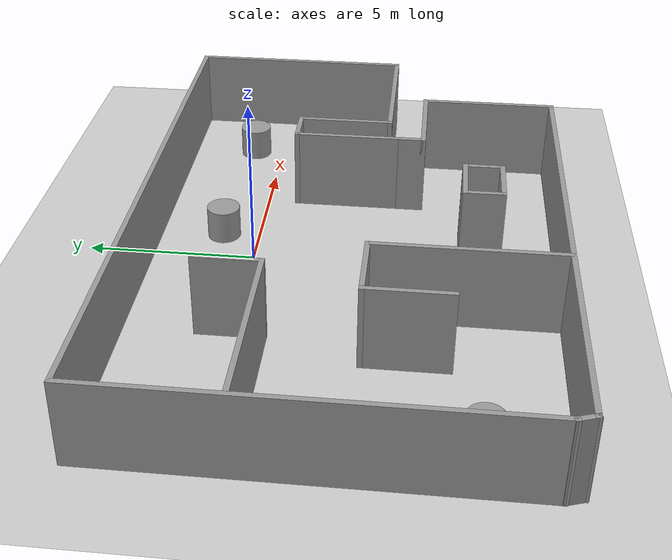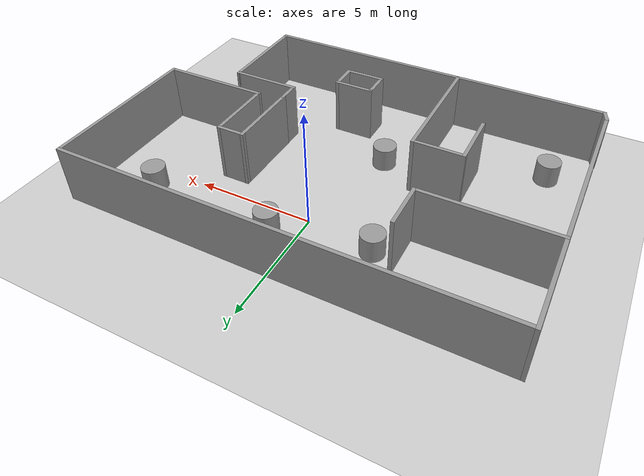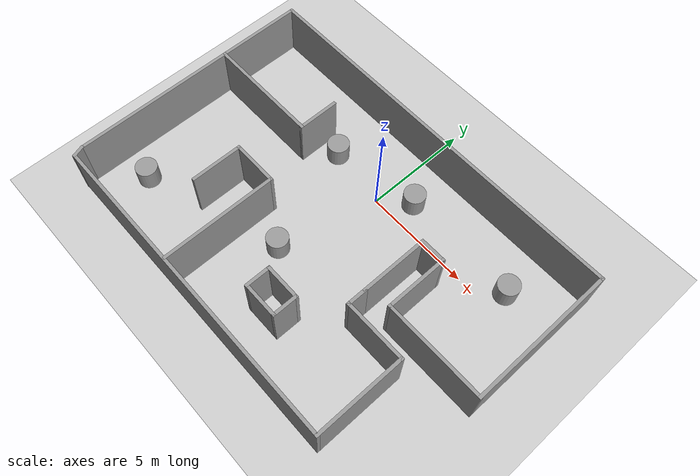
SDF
<sdf version="1.7">
 <world name="default">
  <light name="sun" type="directional">
   <pose>0 0 10 0 -0 0</pose>
   <diffuse>0.8 0.8 0.8 1</diffuse>
   <specular>0.2 0.2 0.2 1</specular>
   <attenuation>
    <range>1000</range>
    <constant>0.9</constant>
    <linear>0.01</linear>
    <quadratic>0.001</quadratic>
   </attenuation>
   <direction>-0.5 0.1 -0.9</direction>
   <spot><inner_angle>0</inner_angle><outer_angle>0</outer_angle><falloff>0</falloff></spot>
  </light>
  <model name="ground_plane">
   <static>1</static>
   <link name="link">
    <collision name="collision">
     <geometry><plane><normal>0 0 1</normal><size>100 100</size></plane></geometry>
     <surface><friction><ode><mu>100</mu><mu2>50</mu2></ode></friction></surface>
    </collision>
    <visual name="visual">
     <cast_shadows>0</cast_shadows>
     <geometry><plane><normal>0 0 1</normal><size>100 100</size></plane></geometry>
     <material>
      <script><uri>file://media/materials/scripts/gazebo.material</uri><name>Gazebo/Grey</name></script>
     </material>
    </visual>
   </link>
  </model>
  <gravity>0 0 -9.8</gravity>
  <magnetic_field>6e-06 2.3e-05 -4.2e-05</magnetic_field>
  <atmosphere type="adiabatic"/>
  <physics type="ode">
   <max_step_size>0.001</max_step_size>
   <real_time_factor>1</real_time_factor>
   <real_time_update_rate>1000</real_time_update_rate>
  </physics>
  <scene><ambient>0.4 0.4 0.4 1</ambient><background>0.7 0.7 0.7 1</background><shadows>1</shadows></scene>
  <audio><device>default</device></audio>
  <spherical_coordinates>
   <surface_model>EARTH_WGS84</surface_model>
   <latitude_deg>0</latitude_deg>
   <longitude_deg>0</longitude_deg>
   <elevation>0</elevation>
   <heading_deg>0</heading_deg>
  </spherical_coordinates>
  <model name="test2">
   <link name="Wall_0">
    <pose>-9.16507 0.234934 0 0 -0 1.5708</pose>
    <visual name="Wall_0_Visual">
     <pose>0 0 1.25 0 -0 0</pose>
     <geometry><box><size>11.75 0.15 2.5</size></box></geometry>
     <material>
      <script><uri>file://media/materials/scripts/gazebo.material</uri><name>Gazebo/Grey</name></script>
      <ambient>1 1 1 1</ambient>
      <shader type="pixel"/>
     </material>
     <meta><layer>0</layer></meta>
    </visual>
    <collision name="Wall_0_Collision">
     <pose>0 0 1.25 0 -0 0</pose>
     <geometry><box><size>11.75 0.15 2.5</size></box></geometry>
     <surface>
      <friction>
       <ode><mu>1</mu><mu2>1</mu2><fdir1>0 0 0</fdir1><slip1>0</slip1><slip2>0</slip2></ode>
       <torsional>
        <coefficient>1</coefficient>
        <patch_radius>0</patch_radius>
        <surface_radius>0</surface_radius>
        <use_patch_radius>1</use_patch_radius>
        <ode><slip>0</slip></ode>
       </torsional>
      </friction>
      <bounce><restitution_coefficient>0</restitution_coefficient><threshold>1e+06</threshold></bounce>
      <contact>
       <collide_without_contact>0</collide_without_contact>
       <collide_without_contact_bitmask>1</collide_without_contact_bitmask>
       <collide_bitmask>1</collide_bitmask>
       <ode>
        <soft_cfm>0</soft_cfm>
        <soft_erp>0.2</soft_erp>
        <kp>1e+13</kp>
        <kd>1</kd>
        <max_vel>0.01</max_vel>
        <min_depth>0</min_depth>
       </ode>
       <bullet>
        <split_impulse>1</split_impulse>
        <split_impulse_penetration_threshold>-0.01</split_impulse_penetration_threshold>
        <soft_cfm>0</soft_cfm>
        <soft_erp>0.2</soft_erp>
        <kp>1e+13</kp>
        <kd>1</kd>
       </bullet>
      </contact>
     </surface>
    </collision>
   </link>
   <link name="Wall_1">
    <pose>0.009934 6.03493 0 0 -0 0</pose>
    <visual name="Wall_1_Visual">
     <pose>0 0 1.25 0 -0 0</pose>
     <geometry><box><size>18.5 0.15 2.5</size></box></geometry>
     <material>
      <script><uri>file://media/materials/scripts/gazebo.material</uri><name>Gazebo/Grey</name></script>
      <ambient>1 1 1 1</ambient>
      <shader type="pixel"/>
     </material>
     <meta><layer>0</layer></meta>
    </visual>
    <collision name="Wall_1_Collision">
     <pose>0 0 1.25 0 -0 0</pose>
     <geometry><box><size>18.5 0.15 2.5</size></box></geometry>
     <surface>
      <friction>
       <ode><mu>1</mu><mu2>1</mu2><fdir1>0 0 0</fdir1><slip1>0</slip1><slip2>0</slip2></ode>
       <torsional>
        <coefficient>1</coefficient>
        <patch_radius>0</patch_radius>
        <surface_radius>0</surface_radius>
        <use_patch_radius>1</use_patch_radius>
        <ode><slip>0</slip></ode>
       </torsional>
      </friction>
      <bounce><restitution_coefficient>0</restitution_coefficient><threshold>1e+06</threshold></bounce>
      <contact>
       <collide_without_contact>0</collide_without_contact>
       <collide_without_contact_bitmask>1</collide_without_contact_bitmask>
       <collide_bitmask>1</collide_bitmask>
       <ode>
        <soft_cfm>0</soft_cfm>
        <soft_erp>0.2</soft_erp>
        <kp>1e+13</kp>
        <kd>1</kd>
        <max_vel>0.01</max_vel>
        <min_depth>0</min_depth>
       </ode>
       <bullet>
        <split_impulse>1</split_impulse>
        <split_impulse_penetration_threshold>-0.01</split_impulse_penetration_threshold>
        <soft_cfm>0</soft_cfm>
        <soft_erp>0.2</soft_erp>
        <kp>1e+13</kp>
        <kd>1</kd>
       </bullet>
      </contact>
     </surface>
    </collision>
   </link>
   <link name="Wall_10">
    <pose>-1.34007 -6.01507 0 0 -0 3.14159</pose>
    <visual name="Wall_10_Visual">
     <pose>0 0 1.25 0 -0 0</pose>
     <geometry><box><size>15.5 0.15 2.5</size></box></geometry>
     <material>
      <script><uri>file://media/materials/scripts/gazebo.material</uri><name>Gazebo/Grey</name></script>
      <ambient>1 1 1 1</ambient>
      <shader type="pixel"/>
     </material>
     <meta><layer>0</layer></meta>
    </visual>
    <collision name="Wall_10_Collision">
     <pose>0 0 1.25 0 -0 0</pose>
     <geometry><box><size>15.5 0.15 2.5</size></box></geometry>
     <surface>
      <friction>
       <ode><mu>1</mu><mu2>1</mu2><fdir1>0 0 0</fdir1><slip1>0</slip1><slip2>0</slip2></ode>
       <torsional>
        <coefficient>1</coefficient>
        <patch_radius>0</patch_radius>
        <surface_radius>0</surface_radius>
        <use_patch_radius>1</use_patch_radius>
        <ode><slip>0</slip></ode>
       </torsional>
      </friction>
      <bounce><restitution_coefficient>0</restitution_coefficient><threshold>1e+06</threshold></bounce>
      <contact>
       <collide_without_contact>0</collide_without_contact>
       <collide_without_contact_bitmask>1</collide_without_contact_bitmask>
       <collide_bitmask>1</collide_bitmask>
       <ode>
        <soft_cfm>0</soft_cfm>
        <soft_erp>0.2</soft_erp>
        <kp>1e+13</kp>
        <kd>1</kd>
        <max_vel>0.01</max_vel>
        <min_depth>0</min_depth>
       </ode>
       <bullet>
        <split_impulse>1</split_impulse>
        <split_impulse_penetration_threshold>-0.01</split_impulse_penetration_threshold>
        <soft_cfm>0</soft_cfm>
        <soft_erp>0.2</soft_erp>
        <kp>1e+13</kp>
        <kd>1</kd>
       </bullet>
      </contact>
     </surface>
    </collision>
   </link>
   <link name="Wall_11">
    <pose>-9.09007 -5.79007 0 0 -0 1.89255</pose>
    <visual name="Wall_11_Visual">
     <pose>0 0 1.25 0 -0 0</pose>
     <geometry><box><size>0.624342 0.15 2.5</size></box></geometry>
     <material>
      <script><uri>file://media/materials/scripts/gazebo.material</uri><name>Gazebo/Grey</name></script>
      <ambient>1 1 1 1</ambient>
      <shader type="pixel"/>
     </material>
     <meta><layer>0</layer></meta>
    </visual>
    <collision name="Wall_11_Collision">
     <pose>0 0 1.25 0 -0 0</pose>
     <geometry><box><size>0.624342 0.15 2.5</size></box></geometry>
     <surface>
      <friction>
       <ode><mu>1</mu><mu2>1</mu2><fdir1>0 0 0</fdir1><slip1>0</slip1><slip2>0</slip2></ode>
       <torsional>
        <coefficient>1</coefficient>
        <patch_radius>0</patch_radius>
        <surface_radius>0</surface_radius>
        <use_patch_radius>1</use_patch_radius>
        <ode><slip>0</slip></ode>
       </torsional>
      </friction>
      <bounce><restitution_coefficient>0</restitution_coefficient><threshold>1e+06</threshold></bounce>
      <contact>
       <collide_without_contact>0</collide_without_contact>
       <collide_without_contact_bitmask>1</collide_without_contact_bitmask>
       <collide_bitmask>1</collide_bitmask>
       <ode>
        <soft_cfm>0</soft_cfm>
        <soft_erp>0.2</soft_erp>
        <kp>1e+13</kp>
        <kd>1</kd>
        <max_vel>0.01</max_vel>
        <min_depth>0</min_depth>
       </ode>
       <bullet>
        <split_impulse>1</split_impulse>
        <split_impulse_penetration_threshold>-0.01</split_impulse_penetration_threshold>
        <soft_cfm>0</soft_cfm>
        <soft_erp>0.2</soft_erp>
        <kp>1e+13</kp>
        <kd>1</kd>
       </bullet>
      </contact>
     </surface>
    </collision>
   </link>
   <link name="Wall_13">
    <pose>-6.49007 2.0519 0 0 -0 0</pose>
    <visual name="Wall_13_Visual">
     <pose>0 0 1.25 0 -0 0</pose>
     <geometry><box><size>5.5 0.15 2.5</size></box></geometry>
     <material>
      <script><uri>file://media/materials/scripts/gazebo.material</uri><name>Gazebo/Grey</name></script>
      <ambient>1 1 1 1</ambient>
      <shader type="pixel"/>
     </material>
     <meta><layer>0</layer></meta>
    </visual>
    <collision name="Wall_13_Collision">
     <pose>0 0 1.25 0 -0 0</pose>
     <geometry><box><size>5.5 0.15 2.5</size></box></geometry>
     <surface>
      <friction>
       <ode><mu>1</mu><mu2>1</mu2><fdir1>0 0 0</fdir1><slip1>0</slip1><slip2>0</slip2></ode>
       <torsional>
        <coefficient>1</coefficient>
        <patch_radius>0</patch_radius>
        <surface_radius>0</surface_radius>
        <use_patch_radius>1</use_patch_radius>
        <ode><slip>0</slip></ode>
       </torsional>
      </friction>
      <bounce><restitution_coefficient>0</restitution_coefficient><threshold>1e+06</threshold></bounce>
      <contact>
       <collide_without_contact>0</collide_without_contact>
       <collide_without_contact_bitmask>1</collide_without_contact_bitmask>
       <collide_bitmask>1</collide_bitmask>
       <ode>
        <soft_cfm>0</soft_cfm>
        <soft_erp>0.2</soft_erp>
        <kp>1e+13</kp>
        <kd>1</kd>
        <max_vel>0.01</max_vel>
        <min_depth>0</min_depth>
       </ode>
       <bullet>
        <split_impulse>1</split_impulse>
        <split_impulse_penetration_threshold>-0.01</split_impulse_penetration_threshold>
        <soft_cfm>0</soft_cfm>
        <soft_erp>0.2</soft_erp>
        <kp>1e+13</kp>
        <kd>1</kd>
       </bullet>
      </contact>
     </surface>
    </collision>
   </link>
   <link name="Wall_14">
    <pose>-3.81507 2.9769 0 0 -0 1.5708</pose>
    <visual name="Wall_14_Visual">
     <pose>0 0 1.25 0 -0 0</pose>
     <geometry><box><size>2 0.15 2.5</size></box></geometry>
     <material>
      <script><uri>file://media/materials/scripts/gazebo.material</uri><name>Gazebo/Grey</name></script>
      <ambient>1 1 1 1</ambient>
      <shader type="pixel"/>
     </material>
     <meta><layer>0</layer></meta>
    </visual>
    <collision name="Wall_14_Collision">
     <pose>0 0 1.25 0 -0 0</pose>
     <geometry><box><size>2 0.15 2.5</size></box></geometry>
     <surface>
      <friction>
       <ode><mu>1</mu><mu2>1</mu2><fdir1>0 0 0</fdir1><slip1>0</slip1><slip2>0</slip2></ode>
       <torsional>
        <coefficient>1</coefficient>
        <patch_radius>0</patch_radius>
        <surface_radius>0</surface_radius>
        <use_patch_radius>1</use_patch_radius>
        <ode><slip>0</slip></ode>
       </torsional>
      </friction>
      <bounce><restitution_coefficient>0</restitution_coefficient><threshold>1e+06</threshold></bounce>
      <contact>
       <collide_without_contact>0</collide_without_contact>
       <collide_without_contact_bitmask>1</collide_without_contact_bitmask>
       <collide_bitmask>1</collide_bitmask>
       <ode>
        <soft_cfm>0</soft_cfm>
        <soft_erp>0.2</soft_erp>
        <kp>1e+13</kp>
        <kd>1</kd>
        <max_vel>0.01</max_vel>
        <min_depth>0</min_depth>
       </ode>
       <bullet>
        <split_impulse>1</split_impulse>
        <split_impulse_penetration_threshold>-0.01</split_impulse_penetration_threshold>
        <soft_cfm>0</soft_cfm>
        <soft_erp>0.2</soft_erp>
        <kp>1e+13</kp>
        <kd>1</kd>
       </bullet>
      </contact>
     </surface>
    </collision>
   </link>
   <link name="Wall_16">
    <pose>-2.67994 -3.28774 0 0 -0 1.5708</pose>
    <visual name="Wall_16_Visual">
     <pose>0 0 1.25 0 -0 0</pose>
     <geometry><box><size>5.5 0.15 2.5</size></box></geometry>
     <material>
      <script><uri>file://media/materials/scripts/gazebo.material</uri><name>Gazebo/Grey</name></script>
      <ambient>1 1 1 1</ambient>
      <shader type="pixel"/>
     </material>
     <meta><layer>0</layer></meta>
    </visual>
    <collision name="Wall_16_Collision">
     <pose>0 0 1.25 0 -0 0</pose>
     <geometry><box><size>5.5 0.15 2.5</size></box></geometry>
     <surface>
      <friction>
       <ode><mu>1</mu><mu2>1</mu2><fdir1>0 0 0</fdir1><slip1>0</slip1><slip2>0</slip2></ode>
       <torsional>
        <coefficient>1</coefficient>
        <patch_radius>0</patch_radius>
        <surface_radius>0</surface_radius>
        <use_patch_radius>1</use_patch_radius>
        <ode><slip>0</slip></ode>
       </torsional>
      </friction>
      <bounce><restitution_coefficient>0</restitution_coefficient><threshold>1e+06</threshold></bounce>
      <contact>
       <collide_without_contact>0</collide_without_contact>
       <collide_without_contact_bitmask>1</collide_without_contact_bitmask>
       <collide_bitmask>1</collide_bitmask>
       <ode>
        <soft_cfm>0</soft_cfm>
        <soft_erp>0.2</soft_erp>
        <kp>1e+13</kp>
        <kd>1</kd>
        <max_vel>0.01</max_vel>
        <min_depth>0</min_depth>
       </ode>
       <bullet>
        <split_impulse>1</split_impulse>
        <split_impulse_penetration_threshold>-0.01</split_impulse_penetration_threshold>
        <soft_cfm>0</soft_cfm>
        <soft_erp>0.2</soft_erp>
        <kp>1e+13</kp>
        <kd>1</kd>
       </bullet>
      </contact>
     </surface>
    </collision>
   </link>
   <link name="Wall_17">
    <pose>-3.72994 -0.612739 0 0 -0 3.14159</pose>
    <visual name="Wall_17_Visual">
     <pose>0 0 1.25 0 -0 0</pose>
     <geometry><box><size>2.25 0.15 2.5</size></box></geometry>
     <material>
      <script><uri>file://media/materials/scripts/gazebo.material</uri><name>Gazebo/Grey</name></script>
      <ambient>1 1 1 1</ambient>
      <shader type="pixel"/>
     </material>
     <meta><layer>0</layer></meta>
    </visual>
    <collision name="Wall_17_Collision">
     <pose>0 0 1.25 0 -0 0</pose>
     <geometry><box><size>2.25 0.15 2.5</size></box></geometry>
     <surface>
      <friction>
       <ode><mu>1</mu><mu2>1</mu2><fdir1>0 0 0</fdir1><slip1>0</slip1><slip2>0</slip2></ode>
       <torsional>
        <coefficient>1</coefficient>
        <patch_radius>0</patch_radius>
        <surface_radius>0</surface_radius>
        <use_patch_radius>1</use_patch_radius>
        <ode><slip>0</slip></ode>
       </torsional>
      </friction>
      <bounce><restitution_coefficient>0</restitution_coefficient><threshold>1e+06</threshold></bounce>
      <contact>
       <collide_without_contact>0</collide_without_contact>
       <collide_without_contact_bitmask>1</collide_without_contact_bitmask>
       <collide_bitmask>1</collide_bitmask>
       <ode>
        <soft_cfm>0</soft_cfm>
        <soft_erp>0.2</soft_erp>
        <kp>1e+13</kp>
        <kd>1</kd>
        <max_vel>0.01</max_vel>
        <min_depth>0</min_depth>
       </ode>
       <bullet>
        <split_impulse>1</split_impulse>
        <split_impulse_penetration_threshold>-0.01</split_impulse_penetration_threshold>
        <soft_cfm>0</soft_cfm>
        <soft_erp>0.2</soft_erp>
        <kp>1e+13</kp>
        <kd>1</kd>
       </bullet>
      </contact>
     </surface>
    </collision>
   </link>
   <link name="Wall_18">
    <pose>-4.77994 -1.78774 0 0 0 -1.5708</pose>
    <visual name="Wall_18_Visual">
     <pose>0 0 1.25 0 -0 0</pose>
     <geometry><box><size>2.5 0.15 2.5</size></box></geometry>
     <material>
      <script><uri>file://media/materials/scripts/gazebo.material</uri><name>Gazebo/Grey</name></script>
      <ambient>1 1 1 1</ambient>
      <shader type="pixel"/>
     </material>
     <meta><layer>0</layer></meta>
    </visual>
    <collision name="Wall_18_Collision">
     <pose>0 0 1.25 0 -0 0</pose>
     <geometry><box><size>2.5 0.15 2.5</size></box></geometry>
     <surface>
      <friction>
       <ode><mu>1</mu><mu2>1</mu2><fdir1>0 0 0</fdir1><slip1>0</slip1><slip2>0</slip2></ode>
       <torsional>
        <coefficient>1</coefficient>
        <patch_radius>0</patch_radius>
        <surface_radius>0</surface_radius>
        <use_patch_radius>1</use_patch_radius>
        <ode><slip>0</slip></ode>
       </torsional>
      </friction>
      <bounce><restitution_coefficient>0</restitution_coefficient><threshold>1e+06</threshold></bounce>
      <contact>
       <collide_without_contact>0</collide_without_contact>
       <collide_without_contact_bitmask>1</collide_without_contact_bitmask>
       <collide_bitmask>1</collide_bitmask>
       <ode>
        <soft_cfm>0</soft_cfm>
        <soft_erp>0.2</soft_erp>
        <kp>1e+13</kp>
        <kd>1</kd>
        <max_vel>0.01</max_vel>
        <min_depth>0</min_depth>
       </ode>
       <bullet>
        <split_impulse>1</split_impulse>
        <split_impulse_penetration_threshold>-0.01</split_impulse_penetration_threshold>
        <soft_cfm>0</soft_cfm>
        <soft_erp>0.2</soft_erp>
        <kp>1e+13</kp>
        <kd>1</kd>
       </bullet>
      </contact>
     </surface>
    </collision>
   </link>
   <link name="Wall_2">
    <pose>9.18493 2.60993 0 0 0 -1.5708</pose>
    <visual name="Wall_2_Visual">
     <pose>0 0 1.25 0 -0 0</pose>
     <geometry><box><size>7 0.15 2.5</size></box></geometry>
     <material>
      <script><uri>file://media/materials/scripts/gazebo.material</uri><name>Gazebo/Grey</name></script>
      <ambient>1 1 1 1</ambient>
      <shader type="pixel"/>
     </material>
     <meta><layer>0</layer></meta>
    </visual>
    <collision name="Wall_2_Collision">
     <pose>0 0 1.25 0 -0 0</pose>
     <geometry><box><size>7 0.15 2.5</size></box></geometry>
     <surface>
      <friction>
       <ode><mu>1</mu><mu2>1</mu2><fdir1>0 0 0</fdir1><slip1>0</slip1><slip2>0</slip2></ode>
       <torsional>
        <coefficient>1</coefficient>
        <patch_radius>0</patch_radius>
        <surface_radius>0</surface_radius>
        <use_patch_radius>1</use_patch_radius>
        <ode><slip>0</slip></ode>
       </torsional>
      </friction>
      <bounce><restitution_coefficient>0</restitution_coefficient><threshold>1e+06</threshold></bounce>
      <contact>
       <collide_without_contact>0</collide_without_contact>
       <collide_without_contact_bitmask>1</collide_without_contact_bitmask>
       <collide_bitmask>1</collide_bitmask>
       <ode>
        <soft_cfm>0</soft_cfm>
        <soft_erp>0.2</soft_erp>
        <kp>1e+13</kp>
        <kd>1</kd>
        <max_vel>0.01</max_vel>
        <min_depth>0</min_depth>
       </ode>
       <bullet>
        <split_impulse>1</split_impulse>
        <split_impulse_penetration_threshold>-0.01</split_impulse_penetration_threshold>
        <soft_cfm>0</soft_cfm>
        <soft_erp>0.2</soft_erp>
        <kp>1e+13</kp>
        <kd>1</kd>
       </bullet>
      </contact>
     </surface>
    </collision>
   </link>
   <link name="Wall_25">
    <pose>0.348495 -3.75962 0 0 0 -1.5708</pose>
    <visual name="Wall_25_Visual">
     <pose>0 0 1.25 0 -0 0</pose>
     <geometry><box><size>1.25 0.15 2.5</size></box></geometry>
     <material>
      <script><uri>file://media/materials/scripts/gazebo.material</uri><name>Gazebo/Grey</name></script>
      <ambient>1 1 1 1</ambient>
      <shader type="pixel"/>
     </material>
     <meta><layer>0</layer></meta>
    </visual>
    <collision name="Wall_25_Collision">
     <pose>0 0 1.25 0 -0 0</pose>
     <geometry><box><size>1.25 0.15 2.5</size></box></geometry>
     <surface>
      <friction>
       <ode><mu>1</mu><mu2>1</mu2><fdir1>0 0 0</fdir1><slip1>0</slip1><slip2>0</slip2></ode>
       <torsional>
        <coefficient>1</coefficient>
        <patch_radius>0</patch_radius>
        <surface_radius>0</surface_radius>
        <use_patch_radius>1</use_patch_radius>
        <ode><slip>0</slip></ode>
       </torsional>
      </friction>
      <bounce><restitution_coefficient>0</restitution_coefficient><threshold>1e+06</threshold></bounce>
      <contact>
       <collide_without_contact>0</collide_without_contact>
       <collide_without_contact_bitmask>1</collide_without_contact_bitmask>
       <collide_bitmask>1</collide_bitmask>
       <ode>
        <soft_cfm>0</soft_cfm>
        <soft_erp>0.2</soft_erp>
        <kp>1e+13</kp>
        <kd>1</kd>
        <max_vel>0.01</max_vel>
        <min_depth>0</min_depth>
       </ode>
       <bullet>
        <split_impulse>1</split_impulse>
        <split_impulse_penetration_threshold>-0.01</split_impulse_penetration_threshold>
        <soft_cfm>0</soft_cfm>
        <soft_erp>0.2</soft_erp>
        <kp>1e+13</kp>
        <kd>1</kd>
       </bullet>
      </contact>
     </surface>
    </collision>
   </link>
   <link name="Wall_26">
    <pose>1.1485 -4.30962 0 0 -0 0</pose>
    <visual name="Wall_26_Visual">
     <pose>0 0 1.25 0 -0 0</pose>
     <geometry><box><size>1.75 0.15 2.5</size></box></geometry>
     <material>
      <script><uri>file://media/materials/scripts/gazebo.material</uri><name>Gazebo/Grey</name></script>
      <ambient>1 1 1 1</ambient>
      <shader type="pixel"/>
     </material>
     <meta><layer>0</layer></meta>
    </visual>
    <collision name="Wall_26_Collision">
     <pose>0 0 1.25 0 -0 0</pose>
     <geometry><box><size>1.75 0.15 2.5</size></box></geometry>
     <surface>
      <friction>
       <ode><mu>1</mu><mu2>1</mu2><fdir1>0 0 0</fdir1><slip1>0</slip1><slip2>0</slip2></ode>
       <torsional>
        <coefficient>1</coefficient>
        <patch_radius>0</patch_radius>
        <surface_radius>0</surface_radius>
        <use_patch_radius>1</use_patch_radius>
        <ode><slip>0</slip></ode>
       </torsional>
      </friction>
      <bounce><restitution_coefficient>0</restitution_coefficient><threshold>1e+06</threshold></bounce>
      <contact>
       <collide_without_contact>0</collide_without_contact>
       <collide_without_contact_bitmask>1</collide_without_contact_bitmask>
       <collide_bitmask>1</collide_bitmask>
       <ode>
        <soft_cfm>0</soft_cfm>
        <soft_erp>0.2</soft_erp>
        <kp>1e+13</kp>
        <kd>1</kd>
        <max_vel>0.01</max_vel>
        <min_depth>0</min_depth>
       </ode>
       <bullet>
        <split_impulse>1</split_impulse>
        <split_impulse_penetration_threshold>-0.01</split_impulse_penetration_threshold>
        <soft_cfm>0</soft_cfm>
        <soft_erp>0.2</soft_erp>
        <kp>1e+13</kp>
        <kd>1</kd>
       </bullet>
      </contact>
     </surface>
    </collision>
   </link>
   <link name="Wall_27">
    <pose>1.9485 -3.75962 0 0 -0 1.5708</pose>
    <visual name="Wall_27_Visual">
     <pose>0 0 1.25 0 -0 0</pose>
     <geometry><box><size>1.25 0.15 2.5</size></box></geometry>
     <material>
      <script><uri>file://media/materials/scripts/gazebo.material</uri><name>Gazebo/Grey</name></script>
      <ambient>1 1 1 1</ambient>
      <shader type="pixel"/>
     </material>
     <meta><layer>0</layer></meta>
    </visual>
    <collision name="Wall_27_Collision">
     <pose>0 0 1.25 0 -0 0</pose>
     <geometry><box><size>1.25 0.15 2.5</size></box></geometry>
     <surface>
      <friction>
       <ode><mu>1</mu><mu2>1</mu2><fdir1>0 0 0</fdir1><slip1>0</slip1><slip2>0</slip2></ode>
       <torsional>
        <coefficient>1</coefficient>
        <patch_radius>0</patch_radius>
        <surface_radius>0</surface_radius>
        <use_patch_radius>1</use_patch_radius>
        <ode><slip>0</slip></ode>
       </torsional>
      </friction>
      <bounce><restitution_coefficient>0</restitution_coefficient><threshold>1e+06</threshold></bounce>
      <contact>
       <collide_without_contact>0</collide_without_contact>
       <collide_without_contact_bitmask>1</collide_without_contact_bitmask>
       <collide_bitmask>1</collide_bitmask>
       <ode>
        <soft_cfm>0</soft_cfm>
        <soft_erp>0.2</soft_erp>
        <kp>1e+13</kp>
        <kd>1</kd>
        <max_vel>0.01</max_vel>
        <min_depth>0</min_depth>
       </ode>
       <bullet>
        <split_impulse>1</split_impulse>
        <split_impulse_penetration_threshold>-0.01</split_impulse_penetration_threshold>
        <soft_cfm>0</soft_cfm>
        <soft_erp>0.2</soft_erp>
        <kp>1e+13</kp>
        <kd>1</kd>
       </bullet>
      </contact>
     </surface>
    </collision>
   </link>
   <link name="Wall_28">
    <pose>1.1485 -3.20962 0 0 -0 3.14159</pose>
    <visual name="Wall_28_Visual">
     <pose>0 0 1.25 0 -0 0</pose>
     <geometry><box><size>1.75 0.15 2.5</size></box></geometry>
     <material>
      <script><uri>file://media/materials/scripts/gazebo.material</uri><name>Gazebo/Grey</name></script>
      <ambient>1 1 1 1</ambient>
      <shader type="pixel"/>
     </material>
     <meta><layer>0</layer></meta>
    </visual>
    <collision name="Wall_28_Collision">
     <pose>0 0 1.25 0 -0 0</pose>
     <geometry><box><size>1.75 0.15 2.5</size></box></geometry>
     <surface>
      <friction>
       <ode><mu>1</mu><mu2>1</mu2><fdir1>0 0 0</fdir1><slip1>0</slip1><slip2>0</slip2></ode>
       <torsional>
        <coefficient>1</coefficient>
        <patch_radius>0</patch_radius>
        <surface_radius>0</surface_radius>
        <use_patch_radius>1</use_patch_radius>
        <ode><slip>0</slip></ode>
       </torsional>
      </friction>
      <bounce><restitution_coefficient>0</restitution_coefficient><threshold>1e+06</threshold></bounce>
      <contact>
       <collide_without_contact>0</collide_without_contact>
       <collide_without_contact_bitmask>1</collide_without_contact_bitmask>
       <collide_bitmask>1</collide_bitmask>
       <ode>
        <soft_cfm>0</soft_cfm>
        <soft_erp>0.2</soft_erp>
        <kp>1e+13</kp>
        <kd>1</kd>
        <max_vel>0.01</max_vel>
        <min_depth>0</min_depth>
       </ode>
       <bullet>
        <split_impulse>1</split_impulse>
        <split_impulse_penetration_threshold>-0.01</split_impulse_penetration_threshold>
        <soft_cfm>0</soft_cfm>
        <soft_erp>0.2</soft_erp>
        <kp>1e+13</kp>
        <kd>1</kd>
       </bullet>
      </contact>
     </surface>
    </collision>
   </link>
   <link name="Wall_3">
    <pose>6.88493 -0.815066 0 0 -0 3.14159</pose>
    <visual name="Wall_3_Visual">
     <pose>0 0 1.25 0 -0 0</pose>
     <geometry><box><size>4.75 0.15 2.5</size></box></geometry>
     <material>
      <script><uri>file://media/materials/scripts/gazebo.material</uri><name>Gazebo/Grey</name></script>
      <ambient>1 1 1 1</ambient>
      <shader type="pixel"/>
     </material>
     <meta><layer>0</layer></meta>
    </visual>
    <collision name="Wall_3_Collision">
     <pose>0 0 1.25 0 -0 0</pose>
     <geometry><box><size>4.75 0.15 2.5</size></box></geometry>
     <surface>
      <friction>
       <ode><mu>1</mu><mu2>1</mu2><fdir1>0 0 0</fdir1><slip1>0</slip1><slip2>0</slip2></ode>
       <torsional>
        <coefficient>1</coefficient>
        <patch_radius>0</patch_radius>
        <surface_radius>0</surface_radius>
        <use_patch_radius>1</use_patch_radius>
        <ode><slip>0</slip></ode>
       </torsional>
      </friction>
      <bounce><restitution_coefficient>0</restitution_coefficient><threshold>1e+06</threshold></bounce>
      <contact>
       <collide_without_contact>0</collide_without_contact>
       <collide_without_contact_bitmask>1</collide_without_contact_bitmask>
       <collide_bitmask>1</collide_bitmask>
       <ode>
        <soft_cfm>0</soft_cfm>
        <soft_erp>0.2</soft_erp>
        <kp>1e+13</kp>
        <kd>1</kd>
        <max_vel>0.01</max_vel>
        <min_depth>0</min_depth>
       </ode>
       <bullet>
        <split_impulse>1</split_impulse>
        <split_impulse_penetration_threshold>-0.01</split_impulse_penetration_threshold>
        <soft_cfm>0</soft_cfm>
        <soft_erp>0.2</soft_erp>
        <kp>1e+13</kp>
        <kd>1</kd>
       </bullet>
      </contact>
     </surface>
    </collision>
   </link>
   <link name="Wall_4">
    <pose>4.58493 0.609934 0 0 -0 1.5708</pose>
    <visual name="Wall_4_Visual">
     <pose>0 0 1.25 0 -0 0</pose>
     <geometry><box><size>3 0.15 2.5</size></box></geometry>
     <material>
      <script><uri>file://media/materials/scripts/gazebo.material</uri><name>Gazebo/Grey</name></script>
      <ambient>1 1 1 1</ambient>
      <shader type="pixel"/>
     </material>
     <meta><layer>0</layer></meta>
    </visual>
    <collision name="Wall_4_Collision">
     <pose>0 0 1.25 0 -0 0</pose>
     <geometry><box><size>3 0.15 2.5</size></box></geometry>
     <surface>
      <friction>
       <ode><mu>1</mu><mu2>1</mu2><fdir1>0 0 0</fdir1><slip1>0</slip1><slip2>0</slip2></ode>
       <torsional>
        <coefficient>1</coefficient>
        <patch_radius>0</patch_radius>
        <surface_radius>0</surface_radius>
        <use_patch_radius>1</use_patch_radius>
        <ode><slip>0</slip></ode>
       </torsional>
      </friction>
      <bounce><restitution_coefficient>0</restitution_coefficient><threshold>1e+06</threshold></bounce>
      <contact>
       <collide_without_contact>0</collide_without_contact>
       <collide_without_contact_bitmask>1</collide_without_contact_bitmask>
       <collide_bitmask>1</collide_bitmask>
       <ode>
        <soft_cfm>0</soft_cfm>
        <soft_erp>0.2</soft_erp>
        <kp>1e+13</kp>
        <kd>1</kd>
        <max_vel>0.01</max_vel>
        <min_depth>0</min_depth>
       </ode>
       <bullet>
        <split_impulse>1</split_impulse>
        <split_impulse_penetration_threshold>-0.01</split_impulse_penetration_threshold>
        <soft_cfm>0</soft_cfm>
        <soft_erp>0.2</soft_erp>
        <kp>1e+13</kp>
        <kd>1</kd>
       </bullet>
      </contact>
     </surface>
    </collision>
   </link>
   <link name="Wall_5">
    <pose>4.03493 2.03493 0 0 -0 3.14159</pose>
    <visual name="Wall_5_Visual">
     <pose>0 0 1.25 0 -0 0</pose>
     <geometry><box><size>1.25 0.15 2.5</size></box></geometry>
     <material>
      <script><uri>file://media/materials/scripts/gazebo.material</uri><name>Gazebo/Grey</name></script>
      <ambient>1 1 1 1</ambient>
      <shader type="pixel"/>
     </material>
     <meta><layer>0</layer></meta>
    </visual>
    <collision name="Wall_5_Collision">
     <pose>0 0 1.25 0 -0 0</pose>
     <geometry><box><size>1.25 0.15 2.5</size></box></geometry>
     <surface>
      <friction>
       <ode><mu>1</mu><mu2>1</mu2><fdir1>0 0 0</fdir1><slip1>0</slip1><slip2>0</slip2></ode>
       <torsional>
        <coefficient>1</coefficient>
        <patch_radius>0</patch_radius>
        <surface_radius>0</surface_radius>
        <use_patch_radius>1</use_patch_radius>
        <ode><slip>0</slip></ode>
       </torsional>
      </friction>
      <bounce><restitution_coefficient>0</restitution_coefficient><threshold>1e+06</threshold></bounce>
      <contact>
       <collide_without_contact>0</collide_without_contact>
       <collide_without_contact_bitmask>1</collide_without_contact_bitmask>
       <collide_bitmask>1</collide_bitmask>
       <ode>
        <soft_cfm>0</soft_cfm>
        <soft_erp>0.2</soft_erp>
        <kp>1e+13</kp>
        <kd>1</kd>
        <max_vel>0.01</max_vel>
        <min_depth>0</min_depth>
       </ode>
       <bullet>
        <split_impulse>1</split_impulse>
        <split_impulse_penetration_threshold>-0.01</split_impulse_penetration_threshold>
        <soft_cfm>0</soft_cfm>
        <soft_erp>0.2</soft_erp>
        <kp>1e+13</kp>
        <kd>1</kd>
       </bullet>
      </contact>
     </surface>
    </collision>
   </link>
   <link name="Wall_6">
    <pose>3.48493 0.484934 0 0 0 -1.5708</pose>
    <visual name="Wall_6_Visual">
     <pose>0 0 1.25 0 -0 0</pose>
     <geometry><box><size>3.25 0.15 2.5</size></box></geometry>
     <material>
      <script><uri>file://media/materials/scripts/gazebo.material</uri><name>Gazebo/Grey</name></script>
      <ambient>1 1 1 1</ambient>
      <shader type="pixel"/>
     </material>
     <meta><layer>0</layer></meta>
    </visual>
    <collision name="Wall_6_Collision">
     <pose>0 0 1.25 0 -0 0</pose>
     <geometry><box><size>3.25 0.15 2.5</size></box></geometry>
     <surface>
      <friction>
       <ode><mu>1</mu><mu2>1</mu2><fdir1>0 0 0</fdir1><slip1>0</slip1><slip2>0</slip2></ode>
       <torsional>
        <coefficient>1</coefficient>
        <patch_radius>0</patch_radius>
        <surface_radius>0</surface_radius>
        <use_patch_radius>1</use_patch_radius>
        <ode><slip>0</slip></ode>
       </torsional>
      </friction>
      <bounce><restitution_coefficient>0</restitution_coefficient><threshold>1e+06</threshold></bounce>
      <contact>
       <collide_without_contact>0</collide_without_contact>
       <collide_without_contact_bitmask>1</collide_without_contact_bitmask>
       <collide_bitmask>1</collide_bitmask>
       <ode>
        <soft_cfm>0</soft_cfm>
        <soft_erp>0.2</soft_erp>
        <kp>1e+13</kp>
        <kd>1</kd>
        <max_vel>0.01</max_vel>
        <min_depth>0</min_depth>
       </ode>
       <bullet>
        <split_impulse>1</split_impulse>
        <split_impulse_penetration_threshold>-0.01</split_impulse_penetration_threshold>
        <soft_cfm>0</soft_cfm>
        <soft_erp>0.2</soft_erp>
        <kp>1e+13</kp>
        <kd>1</kd>
       </bullet>
      </contact>
     </surface>
    </collision>
   </link>
   <link name="Wall_7">
    <pose>3.48493 -1.49007 0 0 0 -1.5708</pose>
    <visual name="Wall_7_Visual">
     <pose>0 0 1.25 0 -0 0</pose>
     <geometry><box><size>1 0.15 2.5</size></box></geometry>
     <material>
      <script><uri>file://media/materials/scripts/gazebo.material</uri><name>Gazebo/Grey</name></script>
      <ambient>1 1 1 1</ambient>
      <shader type="pixel"/>
     </material>
     <meta><layer>0</layer></meta>
    </visual>
    <collision name="Wall_7_Collision">
     <pose>0 0 1.25 0 -0 0</pose>
     <geometry><box><size>1 0.15 2.5</size></box></geometry>
     <surface>
      <friction>
       <ode><mu>1</mu><mu2>1</mu2><fdir1>0 0 0</fdir1><slip1>0</slip1><slip2>0</slip2></ode>
       <torsional>
        <coefficient>1</coefficient>
        <patch_radius>0</patch_radius>
        <surface_radius>0</surface_radius>
        <use_patch_radius>1</use_patch_radius>
        <ode><slip>0</slip></ode>
       </torsional>
      </friction>
      <bounce><restitution_coefficient>0</restitution_coefficient><threshold>1e+06</threshold></bounce>
      <contact>
       <collide_without_contact>0</collide_without_contact>
       <collide_without_contact_bitmask>1</collide_without_contact_bitmask>
       <collide_bitmask>1</collide_bitmask>
       <ode>
        <soft_cfm>0</soft_cfm>
        <soft_erp>0.2</soft_erp>
        <kp>1e+13</kp>
        <kd>1</kd>
        <max_vel>0.01</max_vel>
        <min_depth>0</min_depth>
       </ode>
       <bullet>
        <split_impulse>1</split_impulse>
        <split_impulse_penetration_threshold>-0.01</split_impulse_penetration_threshold>
        <soft_cfm>0</soft_cfm>
        <soft_erp>0.2</soft_erp>
        <kp>1e+13</kp>
        <kd>1</kd>
       </bullet>
      </contact>
     </surface>
    </collision>
   </link>
   <link name="Wall_8">
    <pose>4.90993 -1.91507 0 0 -0 0</pose>
    <visual name="Wall_8_Visual">
     <pose>0 0 1.25 0 -0 0</pose>
     <geometry><box><size>3 0.15 2.5</size></box></geometry>
     <material>
      <script><uri>file://media/materials/scripts/gazebo.material</uri><name>Gazebo/Grey</name></script>
      <ambient>1 1 1 1</ambient>
      <shader type="pixel"/>
     </material>
     <meta><layer>0</layer></meta>
    </visual>
    <collision name="Wall_8_Collision">
     <pose>0 0 1.25 0 -0 0</pose>
     <geometry><box><size>3 0.15 2.5</size></box></geometry>
     <surface>
      <friction>
       <ode><mu>1</mu><mu2>1</mu2><fdir1>0 0 0</fdir1><slip1>0</slip1><slip2>0</slip2></ode>
       <torsional>
        <coefficient>1</coefficient>
        <patch_radius>0</patch_radius>
        <surface_radius>0</surface_radius>
        <use_patch_radius>1</use_patch_radius>
        <ode><slip>0</slip></ode>
       </torsional>
      </friction>
      <bounce><restitution_coefficient>0</restitution_coefficient><threshold>1e+06</threshold></bounce>
      <contact>
       <collide_without_contact>0</collide_without_contact>
       <collide_without_contact_bitmask>1</collide_without_contact_bitmask>
       <collide_bitmask>1</collide_bitmask>
       <ode>
        <soft_cfm>0</soft_cfm>
        <soft_erp>0.2</soft_erp>
        <kp>1e+13</kp>
        <kd>1</kd>
        <max_vel>0.01</max_vel>
        <min_depth>0</min_depth>
       </ode>
       <bullet>
        <split_impulse>1</split_impulse>
        <split_impulse_penetration_threshold>-0.01</split_impulse_penetration_threshold>
        <soft_cfm>0</soft_cfm>
        <soft_erp>0.2</soft_erp>
        <kp>1e+13</kp>
        <kd>1</kd>
       </bullet>
      </contact>
     </surface>
    </collision>
   </link>
   <link name="Wall_9">
    <pose>6.33493 -3.96507 0 0 0 -1.5708</pose>
    <visual name="Wall_9_Visual">
     <pose>0 0 1.25 0 -0 0</pose>
     <geometry><box><size>4.25 0.15 2.5</size></box></geometry>
     <material>
      <script><uri>file://media/materials/scripts/gazebo.material</uri><name>Gazebo/Grey</name></script>
      <ambient>1 1 1 1</ambient>
      <shader type="pixel"/>
     </material>
     <meta><layer>0</layer></meta>
    </visual>
    <collision name="Wall_9_Collision">
     <pose>0 0 1.25 0 -0 0</pose>
     <geometry><box><size>4.25 0.15 2.5</size></box></geometry>
     <surface>
      <friction>
       <ode><mu>1</mu><mu2>1</mu2><fdir1>0 0 0</fdir1><slip1>0</slip1><slip2>0</slip2></ode>
       <torsional>
        <coefficient>1</coefficient>
        <patch_radius>0</patch_radius>
        <surface_radius>0</surface_radius>
        <use_patch_radius>1</use_patch_radius>
        <ode><slip>0</slip></ode>
       </torsional>
      </friction>
      <bounce><restitution_coefficient>0</restitution_coefficient><threshold>1e+06</threshold></bounce>
      <contact>
       <collide_without_contact>0</collide_without_contact>
       <collide_without_contact_bitmask>1</collide_without_contact_bitmask>
       <collide_bitmask>1</collide_bitmask>
       <ode>
        <soft_cfm>0</soft_cfm>
        <soft_erp>0.2</soft_erp>
        <kp>1e+13</kp>
        <kd>1</kd>
        <max_vel>0.01</max_vel>
        <min_depth>0</min_depth>
       </ode>
       <bullet>
        <split_impulse>1</split_impulse>
        <split_impulse_penetration_threshold>-0.01</split_impulse_penetration_threshold>
        <soft_cfm>0</soft_cfm>
        <soft_erp>0.2</soft_erp>
        <kp>1e+13</kp>
        <kd>1</kd>
       </bullet>
      </contact>
     </surface>
    </collision>
   </link>
   <link name="link_0">
    <inertial>
     <mass>1</mass>
     <inertia><ixx>0.145833</ixx><ixy>0</ixy><ixz>0</ixz><iyy>0.145833</iyy><iyz>0</iyz><izz>0.125</izz></inertia>
    </inertial>
    <pose>1.2536 4.04797 0.5 0 -0 0</pose>
    <visual name="visual">
     <geometry><cylinder><radius>0.5</radius><length>1</length></cylinder></geometry>
     <material>
      <lighting>1</lighting>
      <script><uri>file://media/materials/scripts/gazebo.material</uri><name>Gazebo/Grey</name></script>
      <shader type="pixel"/>
     </material>
    </visual>
    <collision name="collision">
     <geometry><cylinder><radius>0.5</radius><length>1</length></cylinder></geometry>
     <surface>
      <friction>
       <ode><mu>1</mu><mu2>1</mu2><fdir1>0 0 0</fdir1><slip1>0</slip1><slip2>0</slip2></ode>
       <torsional>
        <coefficient>1</coefficient>
        <patch_radius>0</patch_radius>
        <surface_radius>0</surface_radius>
        <use_patch_radius>1</use_patch_radius>
        <ode><slip>0</slip></ode>
       </torsional>
      </friction>
      <bounce><restitution_coefficient>0</restitution_coefficient><threshold>1e+06</threshold></bounce>
      <contact>
       <collide_without_contact>0</collide_without_contact>
       <collide_without_contact_bitmask>1</collide_without_contact_bitmask>
       <collide_bitmask>1</collide_bitmask>
       <ode>
        <soft_cfm>0</soft_cfm>
        <soft_erp>0.2</soft_erp>
        <kp>1e+13</kp>
        <kd>1</kd>
        <max_vel>0.01</max_vel>
        <min_depth>0</min_depth>
       </ode>
       <bullet>
        <split_impulse>1</split_impulse>
        <split_impulse_penetration_threshold>-0.01</split_impulse_penetration_threshold>
        <soft_cfm>0</soft_cfm>
        <soft_erp>0.2</soft_erp>
        <kp>1e+13</kp>
        <kd>1</kd>
       </bullet>
      </contact>
     </surface>
    </collision>
   </link>
   <link name="link_1">
    <inertial>
     <mass>1</mass>
     <inertia><ixx>0.145833</ixx><ixy>0</ixy><ixz>0</ixz><iyy>0.145833</iyy><iyz>0</iyz><izz>0.125</izz></inertia>
    </inertial>
    <pose>-1.06818 -1.7183 0.5 0 -0 0</pose>
    <visual name="visual">
     <geometry><cylinder><radius>0.5</radius><length>1</length></cylinder></geometry>
     <material>
      <lighting>1</lighting>
      <script><uri>file://media/materials/scripts/gazebo.material</uri><name>Gazebo/Grey</name></script>
      <shader type="pixel"/>
     </material>
    </visual>
    <collision name="collision">
     <geometry><cylinder><radius>0.5</radius><length>1</length></cylinder></geometry>
     <surface>
      <friction>
       <ode><mu>1</mu><mu2>1</mu2><fdir1>0 0 0</fdir1><slip1>0</slip1><slip2>0</slip2></ode>
       <torsional>
        <coefficient>1</coefficient>
        <patch_radius>0</patch_radius>
        <surface_radius>0</surface_radius>
        <use_patch_radius>1</use_patch_radius>
        <ode><slip>0</slip></ode>
       </torsional>
      </friction>
      <bounce><restitution_coefficient>0</restitution_coefficient><threshold>1e+06</threshold></bounce>
      <contact>
       <collide_without_contact>0</collide_without_contact>
       <collide_without_contact_bitmask>1</collide_without_contact_bitmask>
       <collide_bitmask>1</collide_bitmask>
       <ode>
        <soft_cfm>0</soft_cfm>
        <soft_erp>0.2</soft_erp>
        <kp>1e+13</kp>
        <kd>1</kd>
        <max_vel>0.01</max_vel>
        <min_depth>0</min_depth>
       </ode>
       <bullet>
        <split_impulse>1</split_impulse>
        <split_impulse_penetration_threshold>-0.01</split_impulse_penetration_threshold>
        <soft_cfm>0</soft_cfm>
        <soft_erp>0.2</soft_erp>
        <kp>1e+13</kp>
        <kd>1</kd>
       </bullet>
      </contact>
     </surface>
    </collision>
   </link>
   <link name="link_2">
    <inertial>
     <mass>1</mass>
     <inertia><ixx>0.145833</ixx><ixy>0</ixy><ixz>0</ixz><iyy>0.145833</iyy><iyz>0</iyz><izz>0.125</izz></inertia>
    </inertial>
    <pose>-7.5488 -3.78488 0.5 0 -0 0</pose>
    <visual name="visual">
     <geometry><cylinder><radius>0.5</radius><length>1</length></cylinder></geometry>
     <material>
      <lighting>1</lighting>
      <script><uri>file://media/materials/scripts/gazebo.material</uri><name>Gazebo/Grey</name></script>
      <shader type="pixel"/>
     </material>
    </visual>
    <collision name="collision">
     <geometry><cylinder><radius>0.5</radius><length>1</length></cylinder></geometry>
     <surface>
      <friction>
       <ode><mu>1</mu><mu2>1</mu2><fdir1>0 0 0</fdir1><slip1>0</slip1><slip2>0</slip2></ode>
       <torsional>
        <coefficient>1</coefficient>
        <patch_radius>0</patch_radius>
        <surface_radius>0</surface_radius>
        <use_patch_radius>1</use_patch_radius>
        <ode><slip>0</slip></ode>
       </torsional>
      </friction>
      <bounce><restitution_coefficient>0</restitution_coefficient><threshold>1e+06</threshold></bounce>
      <contact>
       <collide_without_contact>0</collide_without_contact>
       <collide_without_contact_bitmask>1</collide_without_contact_bitmask>
       <collide_bitmask>1</collide_bitmask>
       <ode>
        <soft_cfm>0</soft_cfm>
        <soft_erp>0.2</soft_erp>
        <kp>1e+13</kp>
        <kd>1</kd>
        <max_vel>0.01</max_vel>
        <min_depth>0</min_depth>
       </ode>
       <bullet>
        <split_impulse>1</split_impulse>
        <split_impulse_penetration_threshold>-0.01</split_impulse_penetration_threshold>
        <soft_cfm>0</soft_cfm>
        <soft_erp>0.2</soft_erp>
        <kp>1e+13</kp>
        <kd>1</kd>
       </bullet>
      </contact>
     </surface>
    </collision>
   </link>
   <link name="link_3">
    <inertial>
     <mass>1</mass>
     <inertia><ixx>0.145833</ixx><ixy>0</ixy><ixz>0</ixz><iyy>0.145833</iyy><iyz>0</iyz><izz>0.125</izz></inertia>
    </inertial>
    <pose>6.76466 3.89479 0.5 0 -0 0</pose>
    <visual name="visual">
     <geometry><cylinder><radius>0.5</radius><length>1</length></cylinder></geometry>
     <material>
      <lighting>1</lighting>
      <script><uri>file://media/materials/scripts/gazebo.material</uri><name>Gazebo/Grey</name></script>
      <shader type="pixel"/>
     </material>
    </visual>
    <collision name="collision">
     <geometry><cylinder><radius>0.5</radius><length>1</length></cylinder></geometry>
     <surface>
      <friction>
       <ode><mu>1</mu><mu2>1</mu2><fdir1>0 0 0</fdir1><slip1>0</slip1><slip2>0</slip2></ode>
       <torsional>
        <coefficient>1</coefficient>
        <patch_radius>0</patch_radius>
        <surface_radius>0</surface_radius>
        <use_patch_radius>1</use_patch_radius>
        <ode><slip>0</slip></ode>
       </torsional>
      </friction>
      <bounce><restitution_coefficient>0</restitution_coefficient><threshold>1e+06</threshold></bounce>
      <contact>
       <collide_without_contact>0</collide_without_contact>
       <collide_without_contact_bitmask>1</collide_without_contact_bitmask>
       <collide_bitmask>1</collide_bitmask>
       <ode>
        <soft_cfm>0</soft_cfm>
        <soft_erp>0.2</soft_erp>
        <kp>1e+13</kp>
        <kd>1</kd>
        <max_vel>0.01</max_vel>
        <min_depth>0</min_depth>
       </ode>
       <bullet>
        <split_impulse>1</split_impulse>
        <split_impulse_penetration_threshold>-0.01</split_impulse_penetration_threshold>
        <soft_cfm>0</soft_cfm>
        <soft_erp>0.2</soft_erp>
        <kp>1e+13</kp>
        <kd>1</kd>
       </bullet>
      </contact>
     </surface>
    </collision>
   </link>
   <link name="link_4">
    <inertial>
     <mass>1</mass>
     <inertia><ixx>0.145833</ixx><ixy>0</ixy><ixz>0</ixz><iyy>0.145833</iyy><iyz>0</iyz><izz>0.125</izz></inertia>
    </inertial>
    <pose>-2.85419 3.33351 0.5 0 -0 0</pose>
    <visual name="visual">
     <geometry><cylinder><radius>0.5</radius><length>1</length></cylinder></geometry>
     <material>
      <lighting>1</lighting>
      <script><uri>file://media/materials/scripts/gazebo.material</uri><name>Gazebo/Grey</name></script>
      <shader type="pixel"/>
     </material>
    </visual>
    <collision name="collision">
     <geometry><cylinder><radius>0.5</radius><length>1</length></cylinder></geometry>
     <surface>
      <friction>
       <ode><mu>1</mu><mu2>1</mu2><fdir1>0 0 0</fdir1><slip1>0</slip1><slip2>0</slip2></ode>
       <torsional>
        <coefficient>1</coefficient>
        <patch_radius>0</patch_radius>
        <surface_radius>0</surface_radius>
        <use_patch_radius>1</use_patch_radius>
        <ode><slip>0</slip></ode>
       </torsional>
      </friction>
      <bounce><restitution_coefficient>0</restitution_coefficient><threshold>1e+06</threshold></bounce>
      <contact>
       <collide_without_contact>0</collide_without_contact>
       <collide_without_contact_bitmask>1</collide_without_contact_bitmask>
       <collide_bitmask>1</collide_bitmask>
       <ode>
        <soft_cfm>0</soft_cfm>
        <soft_erp>0.2</soft_erp>
        <kp>1e+13</kp>
        <kd>1</kd>
        <max_vel>0.01</max_vel>
        <min_depth>0</min_depth>
       </ode>
       <bullet>
        <split_impulse>1</split_impulse>
        <split_impulse_penetration_threshold>-0.01</split_impulse_penetration_threshold>
        <soft_cfm>0</soft_cfm>
        <soft_erp>0.2</soft_erp>
        <kp>1e+13</kp>
        <kd>1</kd>
       </bullet>
      </contact>
     </surface>
    </collision>
   </link>
   <static>1</static>
   <pose>-0.04171 -2.95933 0 0 -0 0</pose>
  </model>
 </world>
</sdf>
